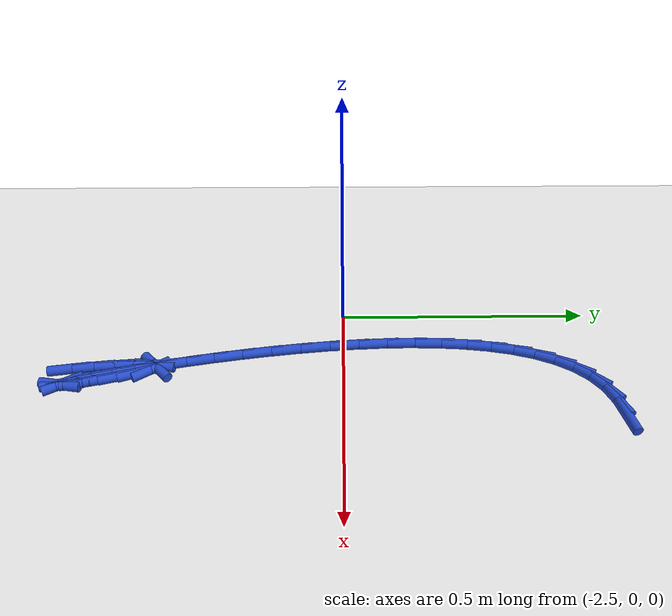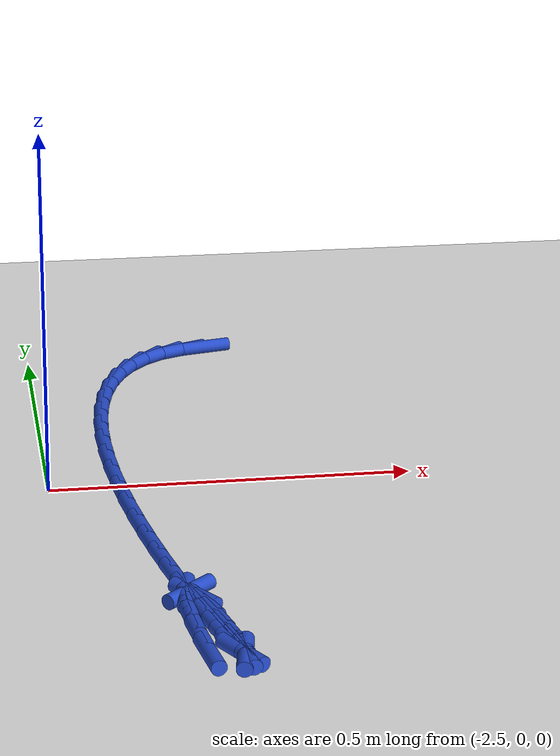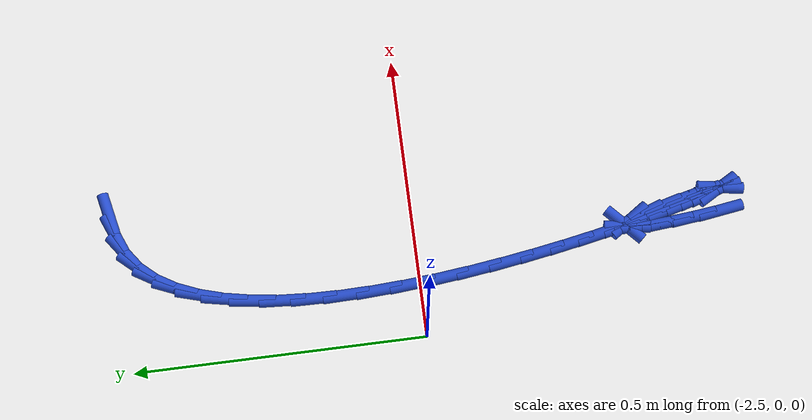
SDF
<sdf version="1.6">
 <world name="default">
  <model name="ground_plane">
   <static>1</static>
   <link name="link">
    <collision name="collision">
     <geometry><plane><normal>0 0 1</normal><size>100 100</size></plane></geometry>
     <surface><friction><ode><mu>100</mu><mu2>50</mu2></ode></friction></surface>
    </collision>
    <visual name="visual">
     <cast_shadows>0</cast_shadows>
     <geometry><plane><normal>0 0 1</normal><size>100 100</size></plane></geometry>
     <material>
      <script><uri>file://media/materials/scripts/gazebo.material</uri><name>Gazebo/WhiteGlow</name></script>
     </material>
    </visual>
   </link>
  </model>
  <model name="line">
   <link name="link_108">
    <pose>-2.221818110925136 0.5201521484364008 0.01 0 1.57 0.22194137851192972</pose>
    <collision name="collision">
     <geometry><cylinder><radius>0.01</radius><length>0.08</length></cylinder></geometry>
    </collision>
    <visual name="visual">
     <material>
      <script><name>Gazebo/Blue</name><uri>file://media/materials/scripts/gazebo.material</uri></script>
     </material>
     <geometry><cylinder><radius>0.01</radius><length>0.08</length></cylinder></geometry>
    </visual>
   </link>
   <link name="link_109">
    <pose>-2.2583325273793937 0.5119123502116679 0.01 0 1.57 0.40176122639829626</pose>
    <collision name="collision">
     <geometry><cylinder><radius>0.01</radius><length>0.08</length></cylinder></geometry>
    </collision>
    <visual name="visual">
     <material>
      <script><name>Gazebo/Blue</name><uri>file://media/materials/scripts/gazebo.material</uri></script>
     </material>
     <geometry><cylinder><radius>0.01</radius><length>0.08</length></cylinder></geometry>
    </visual>
   </link>
   <link name="link_110">
    <pose>-2.291325430146955 0.4978946285326049 0.01 0 1.57 0.634540643131067</pose>
    <collision name="collision">
     <geometry><cylinder><radius>0.01</radius><length>0.08</length></cylinder></geometry>
    </collision>
    <visual name="visual">
     <material>
      <script><name>Gazebo/Blue</name><uri>file://media/materials/scripts/gazebo.material</uri></script>
     </material>
     <geometry><cylinder><radius>0.01</radius><length>0.08</length></cylinder></geometry>
    </visual>
   </link>
   <link name="link_111">
    <pose>-2.319795264679456 0.47693820071877796 0.01 0 1.57 0.850514775429865</pose>
    <collision name="collision">
     <geometry><cylinder><radius>0.01</radius><length>0.08</length></cylinder></geometry>
    </collision>
    <visual name="visual">
     <material>
      <script><name>Gazebo/Blue</name><uri>file://media/materials/scripts/gazebo.material</uri></script>
     </material>
     <geometry><cylinder><radius>0.01</radius><length>0.08</length></cylinder></geometry>
    </visual>
   </link>
   <link name="link_112">
    <pose>-2.3438838042454306 0.44948894305331466 0.01 0 1.57 1.0307251472587518</pose>
    <collision name="collision">
     <geometry><cylinder><radius>0.01</radius><length>0.08</length></cylinder></geometry>
    </collision>
    <visual name="visual">
     <material>
      <script><name>Gazebo/Blue</name><uri>file://media/materials/scripts/gazebo.material</uri></script>
     </material>
     <geometry><cylinder><radius>0.01</radius><length>0.08</length></cylinder></geometry>
    </visual>
   </link>
   <link name="link_113">
    <pose>-2.363859197482246 0.41617032053547287 0.01 0 1.57 1.1746395494196735</pose>
    <collision name="collision">
     <geometry><cylinder><radius>0.01</radius><length>0.08</length></cylinder></geometry>
    </collision>
    <visual name="visual">
     <material>
      <script><name>Gazebo/Blue</name><uri>file://media/materials/scripts/gazebo.material</uri></script>
     </material>
     <geometry><cylinder><radius>0.01</radius><length>0.08</length></cylinder></geometry>
    </visual>
   </link>
   <link name="link_114">
    <pose>-2.379989593027272 0.3776057981645112 0.01 0 1.57 1.2879125869334083</pose>
    <collision name="collision">
     <geometry><cylinder><radius>0.01</radius><length>0.08</length></cylinder></geometry>
    </collision>
    <visual name="visual">
     <material>
      <script><name>Gazebo/Blue</name><uri>file://media/materials/scripts/gazebo.material</uri></script>
     </material>
     <geometry><cylinder><radius>0.01</radius><length>0.08</length></cylinder></geometry>
    </visual>
   </link>
   <link name="link_115">
    <pose>-2.3925431395178793 0.3344188409396877 0.01 0 1.57 1.3773232460451705</pose>
    <collision name="collision">
     <geometry><cylinder><radius>0.01</radius><length>0.08</length></cylinder></geometry>
    </collision>
    <visual name="visual">
     <material>
      <script><name>Gazebo/Blue</name><uri>file://media/materials/scripts/gazebo.material</uri></script>
     </material>
     <geometry><cylinder><radius>0.01</radius><length>0.08</length></cylinder></geometry>
    </visual>
   </link>
   <link name="link_116">
    <pose>-2.4017879855914375 0.2872329138602606 0.01 0 1.57 1.4486986626676066</pose>
    <collision name="collision">
     <geometry><cylinder><radius>0.01</radius><length>0.08</length></cylinder></geometry>
    </collision>
    <visual name="visual">
     <material>
      <script><name>Gazebo/Blue</name><uri>file://media/materials/scripts/gazebo.material</uri></script>
     </material>
     <geometry><cylinder><radius>0.01</radius><length>0.08</length></cylinder></geometry>
    </visual>
   </link>
   <link name="link_117">
    <pose>-2.4079922798853137 0.23667148192548815 0.01 0 1.57 1.5065130885692453</pose>
    <collision name="collision">
     <geometry><cylinder><radius>0.01</radius><length>0.08</length></cylinder></geometry>
    </collision>
    <visual name="visual">
     <material>
      <script><name>Gazebo/Blue</name><uri>file://media/materials/scripts/gazebo.material</uri></script>
     </material>
     <geometry><cylinder><radius>0.01</radius><length>0.08</length></cylinder></geometry>
    </visual>
   </link>
   <link name="link_118">
    <pose>-2.411424171036881 0.18335801013462888 0.01 0 1.57 1.554066242789683</pose>
    <collision name="collision">
     <geometry><cylinder><radius>0.01</radius><length>0.08</length></cylinder></geometry>
    </collision>
    <visual name="visual">
     <material>
      <script><name>Gazebo/Blue</name><uri>file://media/materials/scripts/gazebo.material</uri></script>
     </material>
     <geometry><cylinder><radius>0.01</radius><length>0.08</length></cylinder></geometry>
    </visual>
   </link>
   <link name="link_119">
    <pose>-2.4123518076835055 0.1279159634869406 0.01 0 1.57 -1.5478234672072804</pose>
    <collision name="collision">
     <geometry><cylinder><radius>0.01</radius><length>0.08</length></cylinder></geometry>
    </collision>
    <visual name="visual">
     <material>
      <script><name>Gazebo/Blue</name><uri>file://media/materials/scripts/gazebo.material</uri></script>
     </material>
     <geometry><cylinder><radius>0.01</radius><length>0.08</length></cylinder></geometry>
    </visual>
   </link>
   <link name="link_120">
    <pose>-2.41104333846256 0.07096880698168272 0.01 0 1.57 -1.5141994879433252</pose>
    <collision name="collision">
     <geometry><cylinder><radius>0.01</radius><length>0.08</length></cylinder></geometry>
    </collision>
    <visual name="visual">
     <material>
      <script><name>Gazebo/Blue</name><uri>file://media/materials/scripts/gazebo.material</uri></script>
     </material>
     <geometry><cylinder><radius>0.01</radius><length>0.08</length></cylinder></geometry>
    </visual>
   </link>
   <link name="link_121">
    <pose>-2.4077669120114127 0.013140005618111612 0.01 0 1.57 -1.4853363057478808</pose>
    <collision name="collision">
     <geometry><cylinder><radius>0.01</radius><length>0.08</length></cylinder></geometry>
    </collision>
    <visual name="visual">
     <material>
      <script><name>Gazebo/Blue</name><uri>file://media/materials/scripts/gazebo.material</uri></script>
     </material>
     <geometry><cylinder><radius>0.01</radius><length>0.08</length></cylinder></geometry>
    </visual>
   </link>
   <link name="link_122">
    <pose>-2.402790676967432 -0.044946975604513474 0.01 0 1.57 -1.4602353991806514</pose>
    <collision name="collision">
     <geometry><cylinder><radius>0.01</radius><length>0.08</length></cylinder></geometry>
    </collision>
    <visual name="visual">
     <material>
      <script><name>Gazebo/Blue</name><uri>file://media/materials/scripts/gazebo.material</uri></script>
     </material>
     <geometry><cylinder><radius>0.01</radius><length>0.08</length></cylinder></geometry>
    </visual>
   </link>
   <link name="link_123">
    <pose>-2.3963827819679895 -0.10266867168693435 0.01 0 1.57 -1.4381233323318483</pose>
    <collision name="collision">
     <geometry><cylinder><radius>0.01</radius><length>0.08</length></cylinder></geometry>
    </collision>
    <visual name="visual">
     <material>
      <script><name>Gazebo/Blue</name><uri>file://media/materials/scripts/gazebo.material</uri></script>
     </material>
     <geometry><cylinder><radius>0.01</radius><length>0.08</length></cylinder></geometry>
    </visual>
   </link>
   <link name="link_124">
    <pose>-2.388811375650453 -0.15940161762989286 0.01 0 1.57 -1.4183834863468836</pose>
    <collision name="collision">
     <geometry><cylinder><radius>0.01</radius><length>0.08</length></cylinder></geometry>
    </collision>
    <visual name="visual">
     <material>
      <script><name>Gazebo/Blue</name><uri>file://media/materials/scripts/gazebo.material</uri></script>
     </material>
     <geometry><cylinder><radius>0.01</radius><length>0.08</length></cylinder></geometry>
    </visual>
   </link>
   <link name="link_125">
    <pose>-2.3803446066521934 -0.21452234843413048 0.01 0 1.57 -1.4005042341569398</pose>
    <collision name="collision">
     <geometry><cylinder><radius>0.01</radius><length>0.08</length></cylinder></geometry>
    </collision>
    <visual name="visual">
     <material>
      <script><name>Gazebo/Blue</name><uri>file://media/materials/scripts/gazebo.material</uri></script>
     </material>
     <geometry><cylinder><radius>0.01</radius><length>0.08</length></cylinder></geometry>
    </visual>
   </link>
   <link name="link_126">
    <pose>-2.3712506236105795 -0.2674073991003894 0.01 0 1.57 -1.3840353760142252</pose>
    <collision name="collision">
     <geometry><cylinder><radius>0.01</radius><length>0.08</length></cylinder></geometry>
    </collision>
    <visual name="visual">
     <material>
      <script><name>Gazebo/Blue</name><uri>file://media/materials/scripts/gazebo.material</uri></script>
     </material>
     <geometry><cylinder><radius>0.01</radius><length>0.08</length></cylinder></geometry>
    </visual>
   </link>
   <link name="link_127">
    <pose>-2.3617975751629814 -0.31743330462941094 0.01 0 1.57 -1.3685443346340658</pose>
    <collision name="collision">
     <geometry><cylinder><radius>0.01</radius><length>0.08</length></cylinder></geometry>
    </collision>
    <visual name="visual">
     <material>
      <script><name>Gazebo/Blue</name><uri>file://media/materials/scripts/gazebo.material</uri></script>
     </material>
     <geometry><cylinder><radius>0.01</radius><length>0.08</length></cylinder></geometry>
    </visual>
   </link>
   <link name="link_128">
    <pose>-2.3522536099467675 -0.3639766000219371 0.01 0 1.57 -1.3535595875134212</pose>
    <collision name="collision">
     <geometry><cylinder><radius>0.01</radius><length>0.08</length></cylinder></geometry>
    </collision>
    <visual name="visual">
     <material>
      <script><name>Gazebo/Blue</name><uri>file://media/materials/scripts/gazebo.material</uri></script>
     </material>
     <geometry><cylinder><radius>0.01</radius><length>0.08</length></cylinder></geometry>
    </visual>
   </link>
   <link name="link_129">
    <pose>-2.3428868765993087 -0.40641382027870965 0.01 0 1.57 -1.3384757826215277</pose>
    <collision name="collision">
     <geometry><cylinder><radius>0.01</radius><length>0.08</length></cylinder></geometry>
    </collision>
    <visual name="visual">
     <material>
      <script><name>Gazebo/Blue</name><uri>file://media/materials/scripts/gazebo.material</uri></script>
     </material>
     <geometry><cylinder><radius>0.01</radius><length>0.08</length></cylinder></geometry>
    </visual>
   </link>
   <link name="link_130">
    <pose>-2.333965523757974 -0.4441215004004701 0.01 0 1.57 -1.3223545383500825</pose>
    <collision name="collision">
     <geometry><cylinder><radius>0.01</radius><length>0.08</length></cylinder></geometry>
    </collision>
    <visual name="visual">
     <material>
      <script><name>Gazebo/Blue</name><uri>file://media/materials/scripts/gazebo.material</uri></script>
     </material>
     <geometry><cylinder><radius>0.01</radius><length>0.08</length></cylinder></geometry>
    </visual>
   </link>
   <link name="link_131">
    <pose>-2.3257577000601333 -0.4764761753879604 0.01 0 1.57 -1.3034123129964756</pose>
    <collision name="collision">
     <geometry><cylinder><radius>0.01</radius><length>0.08</length></cylinder></geometry>
    </collision>
    <visual name="visual">
     <material>
      <script><name>Gazebo/Blue</name><uri>file://media/materials/scripts/gazebo.material</uri></script>
     </material>
     <geometry><cylinder><radius>0.01</radius><length>0.08</length></cylinder></geometry>
    </visual>
   </link>
   <link name="link_132">
    <pose>-2.318531554143156 -0.5028543802419225 0.01 0 1.57 -1.27735361616729</pose>
    <collision name="collision">
     <geometry><cylinder><radius>0.01</radius><length>0.08</length></cylinder></geometry>
    </collision>
    <visual name="visual">
     <material>
      <script><name>Gazebo/Blue</name><uri>file://media/materials/scripts/gazebo.material</uri></script>
     </material>
     <geometry><cylinder><radius>0.01</radius><length>0.08</length></cylinder></geometry>
    </visual>
   </link>
   <link name="link_133">
    <pose>-2.312555234644411 -0.5226326499630976 0.01 0 1.57 -1.229577523909409</pose>
    <collision name="collision">
     <geometry><cylinder><radius>0.01</radius><length>0.08</length></cylinder></geometry>
    </collision>
    <visual name="visual">
     <material>
      <script><name>Gazebo/Blue</name><uri>file://media/materials/scripts/gazebo.material</uri></script>
     </material>
     <geometry><cylinder><radius>0.01</radius><length>0.08</length></cylinder></geometry>
    </visual>
   </link>
   <link name="link_134">
    <pose>-2.308096890201269 -0.5351875195522279 0.01 0 1.57 -1.0545479665803554</pose>
    <collision name="collision">
     <geometry><cylinder><radius>0.01</radius><length>0.08</length></cylinder></geometry>
    </collision>
    <visual name="visual">
     <material>
      <script><name>Gazebo/Blue</name><uri>file://media/materials/scripts/gazebo.material</uri></script>
     </material>
     <geometry><cylinder><radius>0.01</radius><length>0.08</length></cylinder></geometry>
    </visual>
   </link>
   <link name="link_135">
    <pose>-2.305424669451098 -0.5398955240100548 0.01 0 1.57 1.408003430791546</pose>
    <collision name="collision">
     <geometry><cylinder><radius>0.01</radius><length>0.08</length></cylinder></geometry>
    </collision>
    <visual name="visual">
     <material>
      <script><name>Gazebo/Blue</name><uri>file://media/materials/scripts/gazebo.material</uri></script>
     </material>
     <geometry><cylinder><radius>0.01</radius><length>0.08</length></cylinder></geometry>
    </visual>
   </link>
   <link name="link_136">
    <pose>-2.3048067210312704 -0.5361331983373206 0.01 0 1.57 -1.4389844266021572</pose>
    <collision name="collision">
     <geometry><cylinder><radius>0.01</radius><length>0.08</length></cylinder></geometry>
    </collision>
    <visual name="visual">
     <material>
      <script><name>Gazebo/Blue</name><uri>file://media/materials/scripts/gazebo.material</uri></script>
     </material>
     <geometry><cylinder><radius>0.01</radius><length>0.08</length></cylinder></geometry>
    </visual>
   </link>
   <link name="link_137">
    <pose>-2.306511193579153 -0.5232770775347666 0.01 0 1.57 -1.3827735883986967</pose>
    <collision name="collision">
     <geometry><cylinder><radius>0.01</radius><length>0.08</length></cylinder></geometry>
    </collision>
    <visual name="visual">
     <material>
      <script><name>Gazebo/Blue</name><uri>file://media/materials/scripts/gazebo.material</uri></script>
     </material>
     <geometry><cylinder><radius>0.01</radius><length>0.08</length></cylinder></geometry>
    </visual>
   </link>
   <link name="link_138">
    <pose>-2.310806235732116 -0.5007036966031345 0.01 0 1.57 -1.3566383175434404</pose>
    <collision name="collision">
     <geometry><cylinder><radius>0.01</radius><length>0.08</length></cylinder></geometry>
    </collision>
    <visual name="visual">
     <material>
      <script><name>Gazebo/Blue</name><uri>file://media/materials/scripts/gazebo.material</uri></script>
     </material>
     <geometry><cylinder><radius>0.01</radius><length>0.08</length></cylinder></geometry>
    </visual>
   </link>
   <link name="link_139">
    <pose>-2.3178522388486216 -0.4683072718442113 0.01 0 1.57 -1.336246337896223</pose>
    <collision name="collision">
     <geometry><cylinder><radius>0.01</radius><length>0.08</length></cylinder></geometry>
    </collision>
    <visual name="visual">
     <material>
      <script><name>Gazebo/Blue</name><uri>file://media/materials/scripts/gazebo.material</uri></script>
     </material>
     <geometry><cylinder><radius>0.01</radius><length>0.08</length></cylinder></geometry>
    </visual>
   </link>
   <link name="link_140">
    <pose>-2.3267539177551444 -0.4310536398354449 0.01 0 1.57 -1.3067972901105753</pose>
    <collision name="collision">
     <geometry><cylinder><radius>0.01</radius><length>0.08</length></cylinder></geometry>
    </collision>
    <visual name="visual">
     <material>
      <script><name>Gazebo/Blue</name><uri>file://media/materials/scripts/gazebo.material</uri></script>
     </material>
     <geometry><cylinder><radius>0.01</radius><length>0.08</length></cylinder></geometry>
    </visual>
   </link>
   <link name="link_141">
    <pose>-2.3360181018365247 -0.39678096389116924 0.01 0 1.57 -1.2377616187296328</pose>
    <collision name="collision">
     <geometry><cylinder><radius>0.01</radius><length>0.08</length></cylinder></geometry>
    </collision>
    <visual name="visual">
     <material>
      <script><name>Gazebo/Blue</name><uri>file://media/materials/scripts/gazebo.material</uri></script>
     </material>
     <geometry><cylinder><radius>0.01</radius><length>0.08</length></cylinder></geometry>
    </visual>
   </link>
   <link name="link_142">
    <pose>-2.344166431927965 -0.37322537309467996 0.01 0 1.57 -0.9782791780783987</pose>
    <collision name="collision">
     <geometry><cylinder><radius>0.01</radius><length>0.08</length></cylinder></geometry>
    </collision>
    <visual name="visual">
     <material>
      <script><name>Gazebo/Blue</name><uri>file://media/materials/scripts/gazebo.material</uri></script>
     </material>
     <geometry><cylinder><radius>0.01</radius><length>0.08</length></cylinder></geometry>
    </visual>
   </link>
   <link name="link_143">
    <pose>-2.3503837466539945 -0.3639900101640214 0.01 0 1.57 0.7413226544352142</pose>
    <collision name="collision">
     <geometry><cylinder><radius>0.01</radius><length>0.08</length></cylinder></geometry>
    </collision>
    <visual name="visual">
     <material>
      <script><name>Gazebo/Blue</name><uri>file://media/materials/scripts/gazebo.material</uri></script>
     </material>
     <geometry><cylinder><radius>0.01</radius><length>0.08</length></cylinder></geometry>
    </visual>
   </link>
   <link name="link_144">
    <pose>-2.3546258083785676 -0.36787369344375126 0.01 0 1.57 1.425928446727062</pose>
    <collision name="collision">
     <geometry><cylinder><radius>0.01</radius><length>0.08</length></cylinder></geometry>
    </collision>
    <visual name="visual">
     <material>
      <script><name>Gazebo/Blue</name><uri>file://media/materials/scripts/gazebo.material</uri></script>
     </material>
     <geometry><cylinder><radius>0.01</radius><length>0.08</length></cylinder></geometry>
    </visual>
   </link>
   <link name="link_145">
    <pose>-2.3568917045497932 -0.38340524342112114 0.01 0 1.57 1.559562343141374</pose>
    <collision name="collision">
     <geometry><cylinder><radius>0.01</radius><length>0.08</length></cylinder></geometry>
    </collision>
    <visual name="visual">
     <material>
      <script><name>Gazebo/Blue</name><uri>file://media/materials/scripts/gazebo.material</uri></script>
     </material>
     <geometry><cylinder><radius>0.01</radius><length>0.08</length></cylinder></geometry>
    </visual>
   </link>
   <link name="link_146">
    <pose>-2.3571805226157805 -0.4091134805833838 0.01 0 1.57 -1.5217514465215638</pose>
    <collision name="collision">
     <geometry><cylinder><radius>0.01</radius><length>0.08</length></cylinder></geometry>
    </collision>
    <visual name="visual">
     <material>
      <script><name>Gazebo/Blue</name><uri>file://media/materials/scripts/gazebo.material</uri></script>
     </material>
     <geometry><cylinder><radius>0.01</radius><length>0.08</length></cylinder></geometry>
    </visual>
   </link>
   <link name="link_147">
    <pose>-2.35549135002464 -0.4435272254177914 0.01 0 1.57 -1.4829498751626222</pose>
    <collision name="collision">
     <geometry><cylinder><radius>0.01</radius><length>0.08</length></cylinder></geometry>
    </collision>
    <visual name="visual">
     <material>
      <script><name>Gazebo/Blue</name><uri>file://media/materials/scripts/gazebo.material</uri></script>
     </material>
     <geometry><cylinder><radius>0.01</radius><length>0.08</length></cylinder></geometry>
    </visual>
   </link>
   <link name="link_148">
    <pose>-2.35182327422448 -0.4851752984115961 0.01 0 1.57 -1.4522294493232388</pose>
    <collision name="collision">
     <geometry><cylinder><radius>0.01</radius><length>0.08</length></cylinder></geometry>
    </collision>
    <visual name="visual">
     <material>
      <script><name>Gazebo/Blue</name><uri>file://media/materials/scripts/gazebo.material</uri></script>
     </material>
     <geometry><cylinder><radius>0.01</radius><length>0.08</length></cylinder></geometry>
    </visual>
   </link>
   <link name="link_149">
    <pose>-2.3461753826634113 -0.5325865200520499 0.01 0 1.57 -1.4243068434952635</pose>
    <collision name="collision">
     <geometry><cylinder><radius>0.01</radius><length>0.08</length></cylinder></geometry>
    </collision>
    <visual name="visual">
     <material>
      <script><name>Gazebo/Blue</name><uri>file://media/materials/scripts/gazebo.material</uri></script>
     </material>
     <geometry><cylinder><radius>0.01</radius><length>0.08</length></cylinder></geometry>
    </visual>
   </link>
  </model>
 </world>
</sdf>
